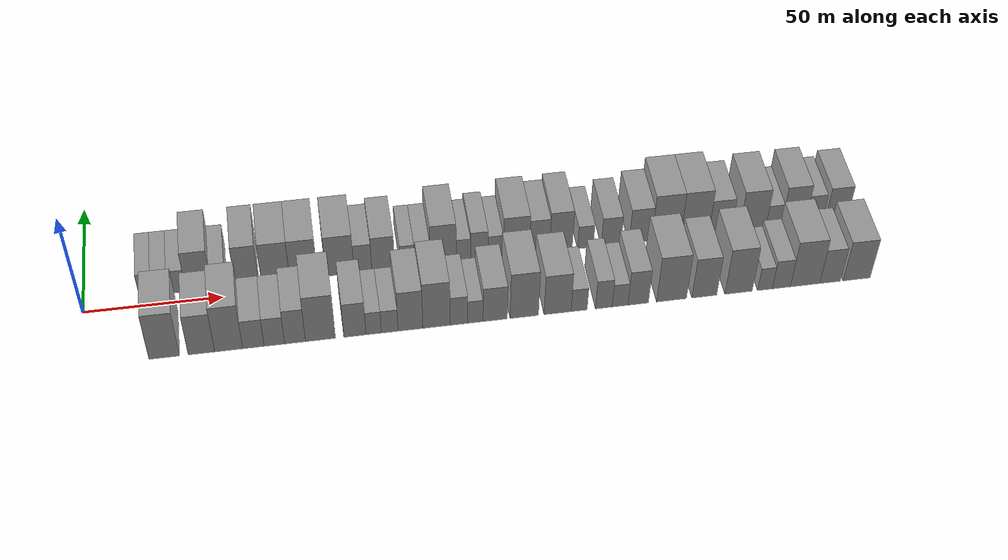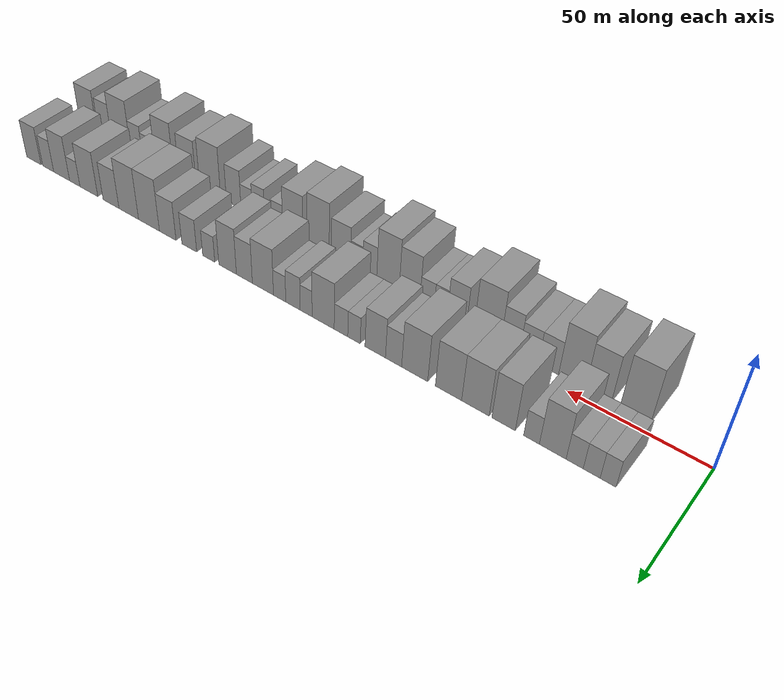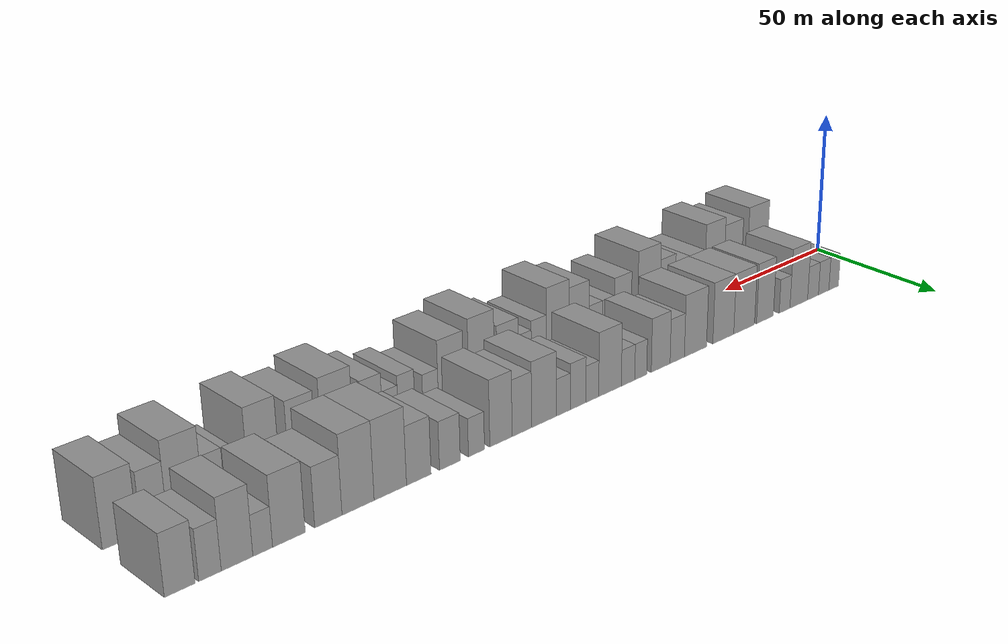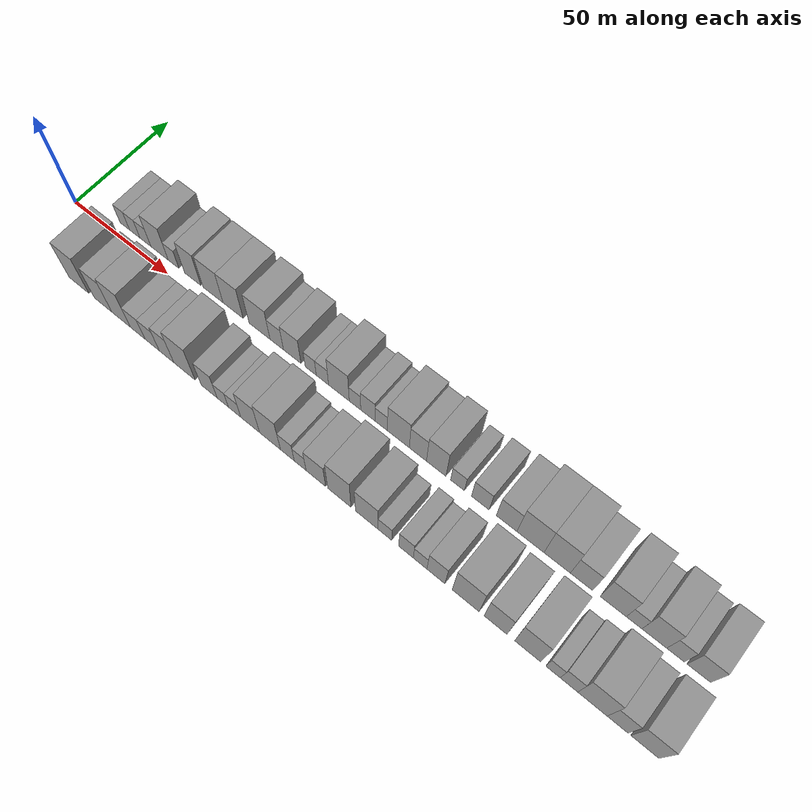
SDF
<sdf version="1.6">
 <world name="default">
  <scene>
   <sky><clouds><speed>12</speed></clouds></sky>
   <ambient>0.4 0.4 0.4 1</ambient>
   <background>0.7 0.7 0.7 1</background>
   <shadows>1</shadows>
  </scene>
  <gravity>0 0 -9.8066</gravity>
  <magnetic_field>6e-06 2.3e-05 -4.2e-05</magnetic_field>
  <physics default="0" name="default_physics" type="ode">
   <ode>
    <solver>
     <type>quick</type>
     <iters>10</iters>
     <sor>1.0</sor>
     <use_dynamic_moi_rescaling>0</use_dynamic_moi_rescaling>
    </solver>
    <constraints>
     <cfm>0</cfm>
     <erp>0.2</erp>
     <contact_max_correcting_vel>100</contact_max_correcting_vel>
     <contact_surface_layer>0.001</contact_surface_layer>
    </constraints>
   </ode>
   <max_step_size>0.004</max_step_size>
   <real_time_factor>1</real_time_factor>
   <real_time_update_rate>250</real_time_update_rate>
  </physics>
  <light name="sun" type="directional">
   <pose>0 0 10 0 0 0</pose>
   <diffuse>0.8 0.8 0.8 1</diffuse>
   <specular>0.2 0.2 0.2 1</specular>
   <attenuation>
    <range>1000</range>
    <constant>0.9</constant>
    <linear>0.01</linear>
    <quadratic>0.001</quadratic>
   </attenuation>
   <direction>-0.5 0.1 -0.9</direction>
  </light>
  <model name="building_1">
   <static>1</static>
   <pose>22.6258 14.5000 0 0.000000 0.000000 1.570796</pose>
   <link name="link">
    <pose>0 0 6.00 0 0 0</pose>
    <collision name="collision"><geometry><box><size>20.0000 5.2516 12.0000</size></box></geometry></collision>
    <visual name="visual">
     <cast_shadows>0</cast_shadows>
     <geometry><box><size>20.0000 5.2516 12.0000</size></box></geometry>
     <material>
      <script>
       <uri>model://grey_wall/materials/scripts</uri>
       <uri>model://grey_wall/materials/textures</uri>
       <name>vrc/grey_wall</name>
      </script>
     </material>
    </visual>
   </link>
  </model>
  <model name="building_2">
   <static>1</static>
   <pose>28.0791 14.5000 0 0.000000 0.000000 1.570796</pose>
   <link name="link">
    <pose>0 0 6.00 0 0 0</pose>
    <collision name="collision"><geometry><box><size>20.0000 5.6550 12.0000</size></box></geometry></collision>
    <visual name="visual">
     <cast_shadows>0</cast_shadows>
     <geometry><box><size>20.0000 5.6550 12.0000</size></box></geometry>
     <material>
      <script>
       <uri>model://grey_wall/materials/scripts</uri>
       <uri>model://grey_wall/materials/textures</uri>
       <name>vrc/grey_wall</name>
      </script>
     </material>
    </visual>
   </link>
  </model>
  <model name="building_3">
   <static>1</static>
   <pose>33.8192 14.5000 0 0.000000 0.000000 1.570796</pose>
   <link name="link">
    <pose>0 0 6.00 0 0 0</pose>
    <collision name="collision"><geometry><box><size>20.0000 5.8252 12.0000</size></box></geometry></collision>
    <visual name="visual">
     <cast_shadows>0</cast_shadows>
     <geometry><box><size>20.0000 5.8252 12.0000</size></box></geometry>
     <material>
      <script>
       <uri>model://grey_wall/materials/scripts</uri>
       <uri>model://grey_wall/materials/textures</uri>
       <name>vrc/grey_wall</name>
      </script>
     </material>
    </visual>
   </link>
  </model>
  <model name="building_4">
   <static>1</static>
   <pose>41.3657 14.5000 0 0.000000 0.000000 1.570796</pose>
   <link name="link">
    <pose>0 0 10.50 0 0 0</pose>
    <collision name="collision"><geometry><box><size>20.0000 9.2678 21.0000</size></box></geometry></collision>
    <visual name="visual">
     <cast_shadows>0</cast_shadows>
     <geometry><box><size>20.0000 9.2678 21.0000</size></box></geometry>
     <material>
      <script>
       <uri>model://grey_wall/materials/scripts</uri>
       <uri>model://grey_wall/materials/textures</uri>
       <name>vrc/grey_wall</name>
      </script>
     </material>
    </visual>
   </link>
  </model>
  <model name="building_5">
   <static>1</static>
   <pose>48.7886 14.5000 0 0.000000 0.000000 1.570796</pose>
   <link name="link">
    <pose>0 0 6.00 0 0 0</pose>
    <collision name="collision"><geometry><box><size>20.0000 5.5779 12.0000</size></box></geometry></collision>
    <visual name="visual">
     <cast_shadows>0</cast_shadows>
     <geometry><box><size>20.0000 5.5779 12.0000</size></box></geometry>
     <material>
      <script>
       <uri>model://grey_wall/materials/scripts</uri>
       <uri>model://grey_wall/materials/textures</uri>
       <name>vrc/grey_wall</name>
      </script>
     </material>
    </visual>
   </link>
  </model>
  <model name="building_6">
   <static>1</static>
   <pose>58.8360 14.5000 0 0.000000 0.000000 1.570796</pose>
   <link name="link">
    <pose>0 0 10.50 0 0 0</pose>
    <collision name="collision"><geometry><box><size>20.0000 8.5169 21.0000</size></box></geometry></collision>
    <visual name="visual">
     <cast_shadows>0</cast_shadows>
     <geometry><box><size>20.0000 8.5169 21.0000</size></box></geometry>
     <material>
      <script>
       <uri>model://grey_wall/materials/scripts</uri>
       <uri>model://grey_wall/materials/textures</uri>
       <name>vrc/grey_wall</name>
      </script>
     </material>
    </visual>
   </link>
  </model>
  <model name="building_7">
   <static>1</static>
   <pose>69.2296 14.5000 0 0.000000 0.000000 1.570796</pose>
   <link name="link">
    <pose>0 0 10.50 0 0 0</pose>
    <collision name="collision"><geometry><box><size>20.0000 10.2703 21.0000</size></box></geometry></collision>
    <visual name="visual">
     <cast_shadows>0</cast_shadows>
     <geometry><box><size>20.0000 10.2703 21.0000</size></box></geometry>
     <material>
      <script>
       <uri>model://grey_wall/materials/scripts</uri>
       <uri>model://grey_wall/materials/textures</uri>
       <name>vrc/grey_wall</name>
      </script>
     </material>
    </visual>
   </link>
  </model>
  <model name="building_8">
   <static>1</static>
   <pose>79.4094 14.5000 0 0.000000 0.000000 1.570796</pose>
   <link name="link">
    <pose>0 0 10.50 0 0 0</pose>
    <collision name="collision"><geometry><box><size>20.0000 10.0893 21.0000</size></box></geometry></collision>
    <visual name="visual">
     <cast_shadows>0</cast_shadows>
     <geometry><box><size>20.0000 10.0893 21.0000</size></box></geometry>
     <material>
      <script>
       <uri>model://grey_wall/materials/scripts</uri>
       <uri>model://grey_wall/materials/textures</uri>
       <name>vrc/grey_wall</name>
      </script>
     </material>
    </visual>
   </link>
  </model>
  <model name="building_9">
   <static>1</static>
   <pose>92.6335 14.5000 0 0.000000 0.000000 1.570796</pose>
   <link name="link">
    <pose>0 0 10.50 0 0 0</pose>
    <collision name="collision"><geometry><box><size>20.0000 10.3589 21.0000</size></box></geometry></collision>
    <visual name="visual">
     <cast_shadows>0</cast_shadows>
     <geometry><box><size>20.0000 10.3589 21.0000</size></box></geometry>
     <material>
      <script>
       <uri>model://grey_wall/materials/scripts</uri>
       <uri>model://grey_wall/materials/textures</uri>
       <name>vrc/grey_wall</name>
      </script>
     </material>
    </visual>
   </link>
  </model>
  <model name="building_10">
   <static>1</static>
   <pose>101.0870 14.5000 0 0.000000 0.000000 1.570796</pose>
   <link name="link">
    <pose>0 0 7.50 0 0 0</pose>
    <collision name="collision"><geometry><box><size>20.0000 6.5481 15.0000</size></box></geometry></collision>
    <visual name="visual">
     <cast_shadows>0</cast_shadows>
     <geometry><box><size>20.0000 6.5481 15.0000</size></box></geometry>
     <material>
      <script>
       <uri>model://grey_wall/materials/scripts</uri>
       <uri>model://grey_wall/materials/textures</uri>
       <name>vrc/grey_wall</name>
      </script>
     </material>
    </visual>
   </link>
  </model>
  <model name="building_11">
   <static>1</static>
   <pose>108.5912 14.5000 0 0.000000 0.000000 1.570796</pose>
   <link name="link">
    <pose>0 0 9.00 0 0 0</pose>
    <collision name="collision"><geometry><box><size>20.0000 8.4603 18.0000</size></box></geometry></collision>
    <visual name="visual">
     <cast_shadows>0</cast_shadows>
     <geometry><box><size>20.0000 8.4603 18.0000</size></box></geometry>
     <material>
      <script>
       <uri>model://grey_wall/materials/scripts</uri>
       <uri>model://grey_wall/materials/textures</uri>
       <name>vrc/grey_wall</name>
      </script>
     </material>
    </visual>
   </link>
  </model>
  <model name="building_12">
   <static>1</static>
   <pose>117.4545 14.5000 0 0.000000 0.000000 1.570796</pose>
   <link name="link">
    <pose>0 0 6.00 0 0 0</pose>
    <collision name="collision"><geometry><box><size>20.0000 5.2662 12.0000</size></box></geometry></collision>
    <visual name="visual">
     <cast_shadows>0</cast_shadows>
     <geometry><box><size>20.0000 5.2662 12.0000</size></box></geometry>
     <material>
      <script>
       <uri>model://grey_wall/materials/scripts</uri>
       <uri>model://grey_wall/materials/textures</uri>
       <name>vrc/grey_wall</name>
      </script>
     </material>
    </visual>
   </link>
  </model>
  <model name="building_13">
   <static>1</static>
   <pose>122.9980 14.5000 0 0.000000 0.000000 1.570796</pose>
   <link name="link">
    <pose>0 0 6.00 0 0 0</pose>
    <collision name="collision"><geometry><box><size>20.0000 5.8209 12.0000</size></box></geometry></collision>
    <visual name="visual">
     <cast_shadows>0</cast_shadows>
     <geometry><box><size>20.0000 5.8209 12.0000</size></box></geometry>
     <material>
      <script>
       <uri>model://grey_wall/materials/scripts</uri>
       <uri>model://grey_wall/materials/textures</uri>
       <name>vrc/grey_wall</name>
      </script>
     </material>
    </visual>
   </link>
  </model>
  <model name="building_14">
   <static>1</static>
   <pose>130.7285 14.5000 0 0.000000 0.000000 1.570796</pose>
   <link name="link">
    <pose>0 0 10.50 0 0 0</pose>
    <collision name="collision"><geometry><box><size>20.0000 9.6401 21.0000</size></box></geometry></collision>
    <visual name="visual">
     <cast_shadows>0</cast_shadows>
     <geometry><box><size>20.0000 9.6401 21.0000</size></box></geometry>
     <material>
      <script>
       <uri>model://grey_wall/materials/scripts</uri>
       <uri>model://grey_wall/materials/textures</uri>
       <name>vrc/grey_wall</name>
      </script>
     </material>
    </visual>
   </link>
  </model>
  <model name="building_15">
   <static>1</static>
   <pose>138.2018 14.5000 0 0.000000 0.000000 1.570796</pose>
   <link name="link">
    <pose>0 0 6.00 0 0 0</pose>
    <collision name="collision"><geometry><box><size>20.0000 5.3063 12.0000</size></box></geometry></collision>
    <visual name="visual">
     <cast_shadows>0</cast_shadows>
     <geometry><box><size>20.0000 5.3063 12.0000</size></box></geometry>
     <material>
      <script>
       <uri>model://grey_wall/materials/scripts</uri>
       <uri>model://grey_wall/materials/textures</uri>
       <name>vrc/grey_wall</name>
      </script>
     </material>
    </visual>
   </link>
  </model>
  <model name="building_16">
   <static>1</static>
   <pose>144.0889 14.5000 0 0.000000 0.000000 1.570796</pose>
   <link name="link">
    <pose>0 0 7.50 0 0 0</pose>
    <collision name="collision"><geometry><box><size>20.0000 6.4680 15.0000</size></box></geometry></collision>
    <visual name="visual">
     <cast_shadows>0</cast_shadows>
     <geometry><box><size>20.0000 6.4680 15.0000</size></box></geometry>
     <material>
      <script>
       <uri>model://grey_wall/materials/scripts</uri>
       <uri>model://grey_wall/materials/textures</uri>
       <name>vrc/grey_wall</name>
      </script>
     </material>
    </visual>
   </link>
  </model>
  <model name="building_17">
   <static>1</static>
   <pose>150.1326 14.5000 0 0.000000 0.000000 1.570796</pose>
   <link name="link">
    <pose>0 0 6.00 0 0 0</pose>
    <collision name="collision"><geometry><box><size>20.0000 5.6194 12.0000</size></box></geometry></collision>
    <visual name="visual">
     <cast_shadows>0</cast_shadows>
     <geometry><box><size>20.0000 5.6194 12.0000</size></box></geometry>
     <material>
      <script>
       <uri>model://grey_wall/materials/scripts</uri>
       <uri>model://grey_wall/materials/textures</uri>
       <name>vrc/grey_wall</name>
      </script>
     </material>
    </visual>
   </link>
  </model>
  <model name="building_18">
   <static>1</static>
   <pose>157.8572 14.5000 0 0.000000 0.000000 1.570796</pose>
   <link name="link">
    <pose>0 0 10.50 0 0 0</pose>
    <collision name="collision"><geometry><box><size>20.0000 9.8298 21.0000</size></box></geometry></collision>
    <visual name="visual">
     <cast_shadows>0</cast_shadows>
     <geometry><box><size>20.0000 9.8298 21.0000</size></box></geometry>
     <material>
      <script>
       <uri>model://grey_wall/materials/scripts</uri>
       <uri>model://grey_wall/materials/textures</uri>
       <name>vrc/grey_wall</name>
      </script>
     </material>
    </visual>
   </link>
  </model>
  <model name="building_19">
   <static>1</static>
   <pose>166.5571 14.5000 0 0.000000 0.000000 1.570796</pose>
   <link name="link">
    <pose>0 0 9.00 0 0 0</pose>
    <collision name="collision"><geometry><box><size>20.0000 7.5701 18.0000</size></box></geometry></collision>
    <visual name="visual">
     <cast_shadows>0</cast_shadows>
     <geometry><box><size>20.0000 7.5701 18.0000</size></box></geometry>
     <material>
      <script>
       <uri>model://grey_wall/materials/scripts</uri>
       <uri>model://grey_wall/materials/textures</uri>
       <name>vrc/grey_wall</name>
      </script>
     </material>
    </visual>
   </link>
  </model>
  <model name="building_20">
   <static>1</static>
   <pose>174.5874 14.5000 0 0.000000 0.000000 1.570796</pose>
   <link name="link">
    <pose>0 0 10.50 0 0 0</pose>
    <collision name="collision"><geometry><box><size>20.0000 8.4906 21.0000</size></box></geometry></collision>
    <visual name="visual">
     <cast_shadows>0</cast_shadows>
     <geometry><box><size>20.0000 8.4906 21.0000</size></box></geometry>
     <material>
      <script>
       <uri>model://grey_wall/materials/scripts</uri>
       <uri>model://grey_wall/materials/textures</uri>
       <name>vrc/grey_wall</name>
      </script>
     </material>
    </visual>
   </link>
  </model>
  <model name="building_21">
   <static>1</static>
   <pose>183.8116 14.5000 0 0.000000 0.000000 1.570796</pose>
   <link name="link">
    <pose>0 0 6.00 0 0 0</pose>
    <collision name="collision"><geometry><box><size>20.0000 5.9578 12.0000</size></box></geometry></collision>
    <visual name="visual">
     <cast_shadows>0</cast_shadows>
     <geometry><box><size>20.0000 5.9578 12.0000</size></box></geometry>
     <material>
      <script>
       <uri>model://grey_wall/materials/scripts</uri>
       <uri>model://grey_wall/materials/textures</uri>
       <name>vrc/grey_wall</name>
      </script>
     </material>
    </visual>
   </link>
  </model>
  <model name="building_22">
   <static>1</static>
   <pose>193.5352 14.5000 0 0.000000 0.000000 1.570796</pose>
   <link name="link">
    <pose>0 0 7.50 0 0 0</pose>
    <collision name="collision"><geometry><box><size>20.0000 7.4895 15.0000</size></box></geometry></collision>
    <visual name="visual">
     <cast_shadows>0</cast_shadows>
     <geometry><box><size>20.0000 7.4895 15.0000</size></box></geometry>
     <material>
      <script>
       <uri>model://grey_wall/materials/scripts</uri>
       <uri>model://grey_wall/materials/textures</uri>
       <name>vrc/grey_wall</name>
      </script>
     </material>
    </visual>
   </link>
  </model>
  <model name="building_23">
   <static>1</static>
   <pose>204.5852 14.5000 0 0.000000 0.000000 1.570796</pose>
   <link name="link">
    <pose>0 0 9.00 0 0 0</pose>
    <collision name="collision"><geometry><box><size>20.0000 8.6106 18.0000</size></box></geometry></collision>
    <visual name="visual">
     <cast_shadows>0</cast_shadows>
     <geometry><box><size>20.0000 8.6106 18.0000</size></box></geometry>
     <material>
      <script>
       <uri>model://grey_wall/materials/scripts</uri>
       <uri>model://grey_wall/materials/textures</uri>
       <name>vrc/grey_wall</name>
      </script>
     </material>
    </visual>
   </link>
  </model>
  <model name="building_24">
   <static>1</static>
   <pose>214.4175 14.5000 0 0.000000 0.000000 1.570796</pose>
   <link name="link">
    <pose>0 0 12.00 0 0 0</pose>
    <collision name="collision"><geometry><box><size>20.0000 11.0539 24.0000</size></box></geometry></collision>
    <visual name="visual">
     <cast_shadows>0</cast_shadows>
     <geometry><box><size>20.0000 11.0539 24.0000</size></box></geometry>
     <material>
      <script>
       <uri>model://grey_wall/materials/scripts</uri>
       <uri>model://grey_wall/materials/textures</uri>
       <name>vrc/grey_wall</name>
      </script>
     </material>
    </visual>
   </link>
  </model>
  <model name="building_25">
   <static>1</static>
   <pose>225.2516 14.5000 0 0.000000 0.000000 1.570796</pose>
   <link name="link">
    <pose>0 0 12.00 0 0 0</pose>
    <collision name="collision"><geometry><box><size>20.0000 10.6143 24.0000</size></box></geometry></collision>
    <visual name="visual">
     <cast_shadows>0</cast_shadows>
     <geometry><box><size>20.0000 10.6143 24.0000</size></box></geometry>
     <material>
      <script>
       <uri>model://grey_wall/materials/scripts</uri>
       <uri>model://grey_wall/materials/textures</uri>
       <name>vrc/grey_wall</name>
      </script>
     </material>
    </visual>
   </link>
  </model>
  <model name="building_26">
   <static>1</static>
   <pose>234.9489 14.5000 0 0.000000 0.000000 1.570796</pose>
   <link name="link">
    <pose>0 0 9.00 0 0 0</pose>
    <collision name="collision"><geometry><box><size>20.0000 8.7802 18.0000</size></box></geometry></collision>
    <visual name="visual">
     <cast_shadows>0</cast_shadows>
     <geometry><box><size>20.0000 8.7802 18.0000</size></box></geometry>
     <material>
      <script>
       <uri>model://grey_wall/materials/scripts</uri>
       <uri>model://grey_wall/materials/textures</uri>
       <name>vrc/grey_wall</name>
      </script>
     </material>
    </visual>
   </link>
  </model>
  <model name="building_27">
   <static>1</static>
   <pose>247.3967 14.5000 0 0.000000 0.000000 1.570796</pose>
   <link name="link">
    <pose>0 0 10.50 0 0 0</pose>
    <collision name="collision"><geometry><box><size>20.0000 10.1153 21.0000</size></box></geometry></collision>
    <visual name="visual">
     <cast_shadows>0</cast_shadows>
     <geometry><box><size>20.0000 10.1153 21.0000</size></box></geometry>
     <material>
      <script>
       <uri>model://grey_wall/materials/scripts</uri>
       <uri>model://grey_wall/materials/textures</uri>
       <name>vrc/grey_wall</name>
      </script>
     </material>
    </visual>
   </link>
  </model>
  <model name="building_28">
   <static>1</static>
   <pose>255.4360 14.5000 0 0.000000 0.000000 1.570796</pose>
   <link name="link">
    <pose>0 0 6.00 0 0 0</pose>
    <collision name="collision"><geometry><box><size>20.0000 5.9634 12.0000</size></box></geometry></collision>
    <visual name="visual">
     <cast_shadows>0</cast_shadows>
     <geometry><box><size>20.0000 5.9634 12.0000</size></box></geometry>
     <material>
      <script>
       <uri>model://grey_wall/materials/scripts</uri>
       <uri>model://grey_wall/materials/textures</uri>
       <name>vrc/grey_wall</name>
      </script>
     </material>
    </visual>
   </link>
  </model>
  <model name="building_29">
   <static>1</static>
   <pose>263.0962 14.5000 0 0.000000 0.000000 1.570796</pose>
   <link name="link">
    <pose>0 0 10.50 0 0 0</pose>
    <collision name="collision"><geometry><box><size>20.0000 9.3569 21.0000</size></box></geometry></collision>
    <visual name="visual">
     <cast_shadows>0</cast_shadows>
     <geometry><box><size>20.0000 9.3569 21.0000</size></box></geometry>
     <material>
      <script>
       <uri>model://grey_wall/materials/scripts</uri>
       <uri>model://grey_wall/materials/textures</uri>
       <name>vrc/grey_wall</name>
      </script>
     </material>
    </visual>
   </link>
  </model>
  <model name="building_30">
   <static>1</static>
   <pose>271.0513 14.5000 0 0.000000 0.000000 1.570796</pose>
   <link name="link">
    <pose>0 0 7.50 0 0 0</pose>
    <collision name="collision"><geometry><box><size>20.0000 6.5532 15.0000</size></box></geometry></collision>
    <visual name="visual">
     <cast_shadows>0</cast_shadows>
     <geometry><box><size>20.0000 6.5532 15.0000</size></box></geometry>
     <material>
      <script>
       <uri>model://grey_wall/materials/scripts</uri>
       <uri>model://grey_wall/materials/textures</uri>
       <name>vrc/grey_wall</name>
      </script>
     </material>
    </visual>
   </link>
  </model>
  <model name="building_31">
   <static>1</static>
   <pose>279.6698 14.5000 0 0.000000 0.000000 1.570796</pose>
   <link name="link">
    <pose>0 0 9.00 0 0 0</pose>
    <collision name="collision"><geometry><box><size>20.0000 8.6839 18.0000</size></box></geometry></collision>
    <visual name="visual">
     <cast_shadows>0</cast_shadows>
     <geometry><box><size>20.0000 8.6839 18.0000</size></box></geometry>
     <material>
      <script>
       <uri>model://grey_wall/materials/scripts</uri>
       <uri>model://grey_wall/materials/textures</uri>
       <name>vrc/grey_wall</name>
      </script>
     </material>
    </visual>
   </link>
  </model>
  <model name="building_32">
   <static>1</static>
   <pose>28.3204 -14.5000 0 0.000000 0.000000 1.570796</pose>
   <link name="link">
    <pose>0 0 12.00 0 0 0</pose>
    <collision name="collision"><geometry><box><size>20.0000 10.6408 24.0000</size></box></geometry></collision>
    <visual name="visual">
     <cast_shadows>0</cast_shadows>
     <geometry><box><size>20.0000 10.6408 24.0000</size></box></geometry>
     <material>
      <script>
       <uri>model://grey_wall/materials/scripts</uri>
       <uri>model://grey_wall/materials/textures</uri>
       <name>vrc/grey_wall</name>
      </script>
     </material>
    </visual>
   </link>
  </model>
  <model name="building_33">
   <static>1</static>
   <pose>41.2649 -14.5000 0 0.000000 0.000000 1.570796</pose>
   <link name="link">
    <pose>0 0 10.50 0 0 0</pose>
    <collision name="collision"><geometry><box><size>20.0000 9.2484 21.0000</size></box></geometry></collision>
    <visual name="visual">
     <cast_shadows>0</cast_shadows>
     <geometry><box><size>20.0000 9.2484 21.0000</size></box></geometry>
     <material>
      <script>
       <uri>model://grey_wall/materials/scripts</uri>
       <uri>model://grey_wall/materials/textures</uri>
       <name>vrc/grey_wall</name>
      </script>
     </material>
    </visual>
   </link>
  </model>
  <model name="building_34">
   <static>1</static>
   <pose>50.8139 -14.5000 0 0.000000 0.000000 1.570796</pose>
   <link name="link">
    <pose>0 0 12.00 0 0 0</pose>
    <collision name="collision"><geometry><box><size>20.0000 9.8495 24.0000</size></box></geometry></collision>
    <visual name="visual">
     <cast_shadows>0</cast_shadows>
     <geometry><box><size>20.0000 9.8495 24.0000</size></box></geometry>
     <material>
      <script>
       <uri>model://grey_wall/materials/scripts</uri>
       <uri>model://grey_wall/materials/textures</uri>
       <name>vrc/grey_wall</name>
      </script>
     </material>
    </visual>
   </link>
  </model>
  <model name="building_35">
   <static>1</static>
   <pose>59.4868 -14.5000 0 0.000000 0.000000 1.570796</pose>
   <link name="link">
    <pose>0 0 7.50 0 0 0</pose>
    <collision name="collision"><geometry><box><size>20.0000 7.4962 15.0000</size></box></geometry></collision>
    <visual name="visual">
     <cast_shadows>0</cast_shadows>
     <geometry><box><size>20.0000 7.4962 15.0000</size></box></geometry>
     <material>
      <script>
       <uri>model://grey_wall/materials/scripts</uri>
       <uri>model://grey_wall/materials/textures</uri>
       <name>vrc/grey_wall</name>
      </script>
     </material>
    </visual>
   </link>
  </model>
  <model name="building_36">
   <static>1</static>
   <pose>66.8421 -14.5000 0 0.000000 0.000000 1.570796</pose>
   <link name="link">
    <pose>0 0 7.50 0 0 0</pose>
    <collision name="collision"><geometry><box><size>20.0000 7.2144 15.0000</size></box></geometry></collision>
    <visual name="visual">
     <cast_shadows>0</cast_shadows>
     <geometry><box><size>20.0000 7.2144 15.0000</size></box></geometry>
     <material>
      <script>
       <uri>model://grey_wall/materials/scripts</uri>
       <uri>model://grey_wall/materials/textures</uri>
       <name>vrc/grey_wall</name>
      </script>
     </material>
    </visual>
   </link>
  </model>
  <model name="building_37">
   <static>1</static>
   <pose>74.1295 -14.5000 0 0.000000 0.000000 1.570796</pose>
   <link name="link">
    <pose>0 0 9.00 0 0 0</pose>
    <collision name="collision"><geometry><box><size>20.0000 7.3604 18.0000</size></box></geometry></collision>
    <visual name="visual">
     <cast_shadows>0</cast_shadows>
     <geometry><box><size>20.0000 7.3604 18.0000</size></box></geometry>
     <material>
      <script>
       <uri>model://grey_wall/materials/scripts</uri>
       <uri>model://grey_wall/materials/textures</uri>
       <name>vrc/grey_wall</name>
      </script>
     </material>
    </visual>
   </link>
  </model>
  <model name="building_38">
   <static>1</static>
   <pose>83.1010 -14.5000 0 0.000000 0.000000 1.570796</pose>
   <link name="link">
    <pose>0 0 12.00 0 0 0</pose>
    <collision name="collision"><geometry><box><size>20.0000 10.5825 24.0000</size></box></geometry></collision>
    <visual name="visual">
     <cast_shadows>0</cast_shadows>
     <geometry><box><size>20.0000 10.5825 24.0000</size></box></geometry>
     <material>
      <script>
       <uri>model://grey_wall/materials/scripts</uri>
       <uri>model://grey_wall/materials/textures</uri>
       <name>vrc/grey_wall</name>
      </script>
     </material>
    </visual>
   </link>
  </model>
  <model name="building_39">
   <static>1</static>
   <pose>95.3060 -14.5000 0 0.000000 0.000000 1.570796</pose>
   <link name="link">
    <pose>0 0 9.00 0 0 0</pose>
    <collision name="collision"><geometry><box><size>20.0000 7.8275 18.0000</size></box></geometry></collision>
    <visual name="visual">
     <cast_shadows>0</cast_shadows>
     <geometry><box><size>20.0000 7.8275 18.0000</size></box></geometry>
     <material>
      <script>
       <uri>model://grey_wall/materials/scripts</uri>
       <uri>model://grey_wall/materials/textures</uri>
       <name>vrc/grey_wall</name>
      </script>
     </material>
    </visual>
   </link>
  </model>
  <model name="building_40">
   <static>1</static>
   <pose>101.9433 -14.5000 0 0.000000 0.000000 1.570796</pose>
   <link name="link">
    <pose>0 0 6.00 0 0 0</pose>
    <collision name="collision"><geometry><box><size>20.0000 5.4470 12.0000</size></box></geometry></collision>
    <visual name="visual">
     <cast_shadows>0</cast_shadows>
     <geometry><box><size>20.0000 5.4470 12.0000</size></box></geometry>
     <material>
      <script>
       <uri>model://grey_wall/materials/scripts</uri>
       <uri>model://grey_wall/materials/textures</uri>
       <name>vrc/grey_wall</name>
      </script>
     </material>
    </visual>
   </link>
  </model>
  <model name="building_41">
   <static>1</static>
   <pose>107.6634 -14.5000 0 0.000000 0.000000 1.570796</pose>
   <link name="link">
    <pose>0 0 6.00 0 0 0</pose>
    <collision name="collision"><geometry><box><size>20.0000 5.9933 12.0000</size></box></geometry></collision>
    <visual name="visual">
     <cast_shadows>0</cast_shadows>
     <geometry><box><size>20.0000 5.9933 12.0000</size></box></geometry>
     <material>
      <script>
       <uri>model://grey_wall/materials/scripts</uri>
       <uri>model://grey_wall/materials/textures</uri>
       <name>vrc/grey_wall</name>
      </script>
     </material>
    </visual>
   </link>
  </model>
  <model name="building_42">
   <static>1</static>
   <pose>115.0881 -14.5000 0 0.000000 0.000000 1.570796</pose>
   <link name="link">
    <pose>0 0 10.50 0 0 0</pose>
    <collision name="collision"><geometry><box><size>20.0000 8.8559 21.0000</size></box></geometry></collision>
    <visual name="visual">
     <cast_shadows>0</cast_shadows>
     <geometry><box><size>20.0000 8.8559 21.0000</size></box></geometry>
     <material>
      <script>
       <uri>model://grey_wall/materials/scripts</uri>
       <uri>model://grey_wall/materials/textures</uri>
       <name>vrc/grey_wall</name>
      </script>
     </material>
    </visual>
   </link>
  </model>
  <model name="building_43">
   <static>1</static>
   <pose>124.4209 -14.5000 0 0.000000 0.000000 1.570796</pose>
   <link name="link">
    <pose>0 0 12.00 0 0 0</pose>
    <collision name="collision"><geometry><box><size>20.0000 9.8098 24.0000</size></box></geometry></collision>
    <visual name="visual">
     <cast_shadows>0</cast_shadows>
     <geometry><box><size>20.0000 9.8098 24.0000</size></box></geometry>
     <material>
      <script>
       <uri>model://grey_wall/materials/scripts</uri>
       <uri>model://grey_wall/materials/textures</uri>
       <name>vrc/grey_wall</name>
      </script>
     </material>
    </visual>
   </link>
  </model>
  <model name="building_44">
   <static>1</static>
   <pose>132.4947 -14.5000 0 0.000000 0.000000 1.570796</pose>
   <link name="link">
    <pose>0 0 7.50 0 0 0</pose>
    <collision name="collision"><geometry><box><size>20.0000 6.3378 15.0000</size></box></geometry></collision>
    <visual name="visual">
     <cast_shadows>0</cast_shadows>
     <geometry><box><size>20.0000 6.3378 15.0000</size></box></geometry>
     <material>
      <script>
       <uri>model://grey_wall/materials/scripts</uri>
       <uri>model://grey_wall/materials/textures</uri>
       <name>vrc/grey_wall</name>
      </script>
     </material>
    </visual>
   </link>
  </model>
  <model name="building_45">
   <static>1</static>
   <pose>138.3684 -14.5000 0 0.000000 0.000000 1.570796</pose>
   <link name="link">
    <pose>0 0 6.00 0 0 0</pose>
    <collision name="collision"><geometry><box><size>20.0000 5.4097 12.0000</size></box></geometry></collision>
    <visual name="visual">
     <cast_shadows>0</cast_shadows>
     <geometry><box><size>20.0000 5.4097 12.0000</size></box></geometry>
     <material>
      <script>
       <uri>model://grey_wall/materials/scripts</uri>
       <uri>model://grey_wall/materials/textures</uri>
       <name>vrc/grey_wall</name>
      </script>
     </material>
    </visual>
   </link>
  </model>
  <model name="building_46">
   <static>1</static>
   <pose>145.4735 -14.5000 0 0.000000 0.000000 1.570796</pose>
   <link name="link">
    <pose>0 0 9.00 0 0 0</pose>
    <collision name="collision"><geometry><box><size>20.0000 8.8004 18.0000</size></box></geometry></collision>
    <visual name="visual">
     <cast_shadows>0</cast_shadows>
     <geometry><box><size>20.0000 8.8004 18.0000</size></box></geometry>
     <material>
      <script>
       <uri>model://grey_wall/materials/scripts</uri>
       <uri>model://grey_wall/materials/textures</uri>
       <name>vrc/grey_wall</name>
      </script>
     </material>
    </visual>
   </link>
  </model>
  <model name="building_47">
   <static>1</static>
   <pose>156.0291 -14.5000 0 0.000000 0.000000 1.570796</pose>
   <link name="link">
    <pose>0 0 12.00 0 0 0</pose>
    <collision name="collision"><geometry><box><size>20.0000 10.3108 24.0000</size></box></geometry></collision>
    <visual name="visual">
     <cast_shadows>0</cast_shadows>
     <geometry><box><size>20.0000 10.3108 24.0000</size></box></geometry>
     <material>
      <script>
       <uri>model://grey_wall/materials/scripts</uri>
       <uri>model://grey_wall/materials/textures</uri>
       <name>vrc/grey_wall</name>
      </script>
     </material>
    </visual>
   </link>
  </model>
  <model name="building_48">
   <static>1</static>
   <pose>168.1016 -14.5000 0 0.000000 0.000000 1.570796</pose>
   <link name="link">
    <pose>0 0 10.50 0 0 0</pose>
    <collision name="collision"><geometry><box><size>20.0000 9.8342 21.0000</size></box></geometry></collision>
    <visual name="visual">
     <cast_shadows>0</cast_shadows>
     <geometry><box><size>20.0000 9.8342 21.0000</size></box></geometry>
     <material>
      <script>
       <uri>model://grey_wall/materials/scripts</uri>
       <uri>model://grey_wall/materials/textures</uri>
       <name>vrc/grey_wall</name>
      </script>
     </material>
    </visual>
   </link>
  </model>
  <model name="building_49">
   <static>1</static>
   <pose>175.9590 -14.5000 0 0.000000 0.000000 1.570796</pose>
   <link name="link">
    <pose>0 0 6.00 0 0 0</pose>
    <collision name="collision"><geometry><box><size>20.0000 5.8806 12.0000</size></box></geometry></collision>
    <visual name="visual">
     <cast_shadows>0</cast_shadows>
     <geometry><box><size>20.0000 5.8806 12.0000</size></box></geometry>
     <material>
      <script>
       <uri>model://grey_wall/materials/scripts</uri>
       <uri>model://grey_wall/materials/textures</uri>
       <name>vrc/grey_wall</name>
      </script>
     </material>
    </visual>
   </link>
  </model>
  <model name="building_50">
   <static>1</static>
   <pose>184.9941 -14.5000 0 0.000000 0.000000 1.570796</pose>
   <link name="link">
    <pose>0 0 7.50 0 0 0</pose>
    <collision name="collision"><geometry><box><size>20.0000 6.1898 15.0000</size></box></geometry></collision>
    <visual name="visual">
     <cast_shadows>0</cast_shadows>
     <geometry><box><size>20.0000 6.1898 15.0000</size></box></geometry>
     <material>
      <script>
       <uri>model://grey_wall/materials/scripts</uri>
       <uri>model://grey_wall/materials/textures</uri>
       <name>vrc/grey_wall</name>
      </script>
     </material>
    </visual>
   </link>
  </model>
  <model name="building_51">
   <static>1</static>
   <pose>190.9513 -14.5000 0 0.000000 0.000000 1.570796</pose>
   <link name="link">
    <pose>0 0 6.00 0 0 0</pose>
    <collision name="collision"><geometry><box><size>20.0000 5.7246 12.0000</size></box></geometry></collision>
    <visual name="visual">
     <cast_shadows>0</cast_shadows>
     <geometry><box><size>20.0000 5.7246 12.0000</size></box></geometry>
     <material>
      <script>
       <uri>model://grey_wall/materials/scripts</uri>
       <uri>model://grey_wall/materials/textures</uri>
       <name>vrc/grey_wall</name>
      </script>
     </material>
    </visual>
   </link>
  </model>
  <model name="building_52">
   <static>1</static>
   <pose>197.5646 -14.5000 0 0.000000 0.000000 1.570796</pose>
   <link name="link">
    <pose>0 0 9.00 0 0 0</pose>
    <collision name="collision"><geometry><box><size>20.0000 7.5018 18.0000</size></box></geometry></collision>
    <visual name="visual">
     <cast_shadows>0</cast_shadows>
     <geometry><box><size>20.0000 7.5018 18.0000</size></box></geometry>
     <material>
      <script>
       <uri>model://grey_wall/materials/scripts</uri>
       <uri>model://grey_wall/materials/textures</uri>
       <name>vrc/grey_wall</name>
      </script>
     </material>
    </visual>
   </link>
  </model>
  <model name="building_53">
   <static>1</static>
   <pose>209.8251 -14.5000 0 0.000000 0.000000 1.570796</pose>
   <link name="link">
    <pose>0 0 12.00 0 0 0</pose>
    <collision name="collision"><geometry><box><size>20.0000 11.0193 24.0000</size></box></geometry></collision>
    <visual name="visual">
     <cast_shadows>0</cast_shadows>
     <geometry><box><size>20.0000 11.0193 24.0000</size></box></geometry>
     <material>
      <script>
       <uri>model://grey_wall/materials/scripts</uri>
       <uri>model://grey_wall/materials/textures</uri>
       <name>vrc/grey_wall</name>
      </script>
     </material>
    </visual>
   </link>
  </model>
  <model name="building_54">
   <static>1</static>
   <pose>221.9398 -14.5000 0 0.000000 0.000000 1.570796</pose>
   <link name="link">
    <pose>0 0 10.50 0 0 0</pose>
    <collision name="collision"><geometry><box><size>20.0000 9.2101 21.0000</size></box></geometry></collision>
    <visual name="visual">
     <cast_shadows>0</cast_shadows>
     <geometry><box><size>20.0000 9.2101 21.0000</size></box></geometry>
     <material>
      <script>
       <uri>model://grey_wall/materials/scripts</uri>
       <uri>model://grey_wall/materials/textures</uri>
       <name>vrc/grey_wall</name>
      </script>
     </material>
    </visual>
   </link>
  </model>
  <model name="building_55">
   <static>1</static>
   <pose>234.6205 -14.5000 0 0.000000 0.000000 1.570796</pose>
   <link name="link">
    <pose>0 0 12.00 0 0 0</pose>
    <collision name="collision"><geometry><box><size>20.0000 10.1513 24.0000</size></box></geometry></collision>
    <visual name="visual">
     <cast_shadows>0</cast_shadows>
     <geometry><box><size>20.0000 10.1513 24.0000</size></box></geometry>
     <material>
      <script>
       <uri>model://grey_wall/materials/scripts</uri>
       <uri>model://grey_wall/materials/textures</uri>
       <name>vrc/grey_wall</name>
      </script>
     </material>
    </visual>
   </link>
  </model>
  <model name="building_56">
   <static>1</static>
   <pose>244.4457 -14.5000 0 0.000000 0.000000 1.570796</pose>
   <link name="link">
    <pose>0 0 6.00 0 0 0</pose>
    <collision name="collision"><geometry><box><size>20.0000 5.4991 12.0000</size></box></geometry></collision>
    <visual name="visual">
     <cast_shadows>0</cast_shadows>
     <geometry><box><size>20.0000 5.4991 12.0000</size></box></geometry>
     <material>
      <script>
       <uri>model://grey_wall/materials/scripts</uri>
       <uri>model://grey_wall/materials/textures</uri>
       <name>vrc/grey_wall</name>
      </script>
     </material>
    </visual>
   </link>
  </model>
  <model name="building_57">
   <static>1</static>
   <pose>250.5486 -14.5000 0 0.000000 0.000000 1.570796</pose>
   <link name="link">
    <pose>0 0 7.50 0 0 0</pose>
    <collision name="collision"><geometry><box><size>20.0000 6.7067 15.0000</size></box></geometry></collision>
    <visual name="visual">
     <cast_shadows>0</cast_shadows>
     <geometry><box><size>20.0000 6.7067 15.0000</size></box></geometry>
     <material>
      <script>
       <uri>model://grey_wall/materials/scripts</uri>
       <uri>model://grey_wall/materials/textures</uri>
       <name>vrc/grey_wall</name>
      </script>
     </material>
    </visual>
   </link>
  </model>
  <model name="building_58">
   <static>1</static>
   <pose>259.4079 -14.5000 0 0.000000 0.000000 1.570796</pose>
   <link name="link">
    <pose>0 0 12.00 0 0 0</pose>
    <collision name="collision"><geometry><box><size>20.0000 11.0119 24.0000</size></box></geometry></collision>
    <visual name="visual">
     <cast_shadows>0</cast_shadows>
     <geometry><box><size>20.0000 11.0119 24.0000</size></box></geometry>
     <material>
      <script>
       <uri>model://grey_wall/materials/scripts</uri>
       <uri>model://grey_wall/materials/textures</uri>
       <name>vrc/grey_wall</name>
      </script>
     </material>
    </visual>
   </link>
  </model>
  <model name="building_59">
   <static>1</static>
   <pose>268.7864 -14.5000 0 0.000000 0.000000 1.570796</pose>
   <link name="link">
    <pose>0 0 9.00 0 0 0</pose>
    <collision name="collision"><geometry><box><size>20.0000 7.7450 18.0000</size></box></geometry></collision>
    <visual name="visual">
     <cast_shadows>0</cast_shadows>
     <geometry><box><size>20.0000 7.7450 18.0000</size></box></geometry>
     <material>
      <script>
       <uri>model://grey_wall/materials/scripts</uri>
       <uri>model://grey_wall/materials/textures</uri>
       <name>vrc/grey_wall</name>
      </script>
     </material>
    </visual>
   </link>
  </model>
  <model name="building_60">
   <static>1</static>
   <pose>278.7642 -14.5000 0 0.000000 0.000000 1.570796</pose>
   <link name="link">
    <pose>0 0 10.50 0 0 0</pose>
    <collision name="collision"><geometry><box><size>20.0000 10.2107 21.0000</size></box></geometry></collision>
    <visual name="visual">
     <cast_shadows>0</cast_shadows>
     <geometry><box><size>20.0000 10.2107 21.0000</size></box></geometry>
     <material>
      <script>
       <uri>model://grey_wall/materials/scripts</uri>
       <uri>model://grey_wall/materials/textures</uri>
       <name>vrc/grey_wall</name>
      </script>
     </material>
    </visual>
   </link>
  </model>
 </world>
</sdf>
